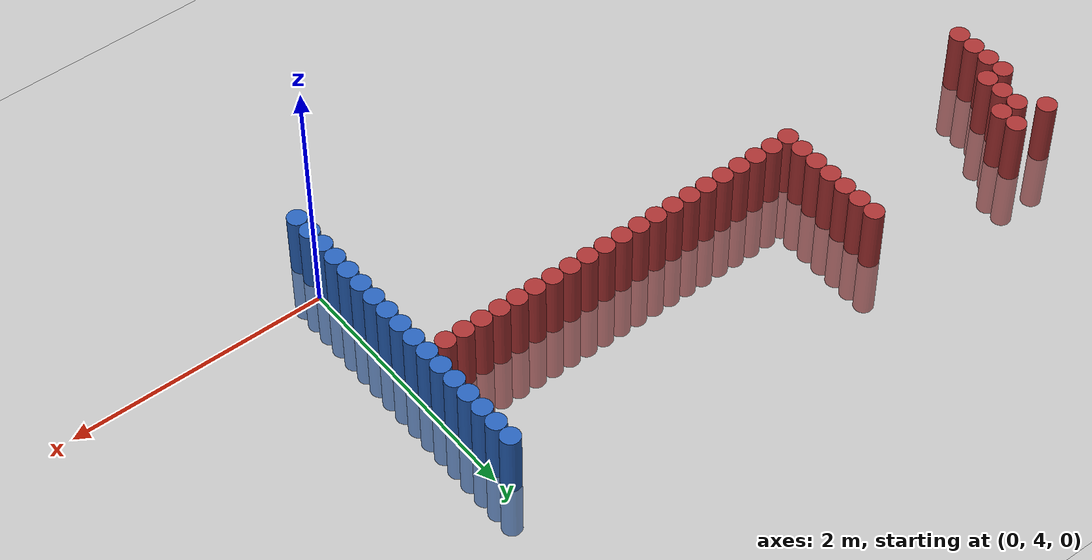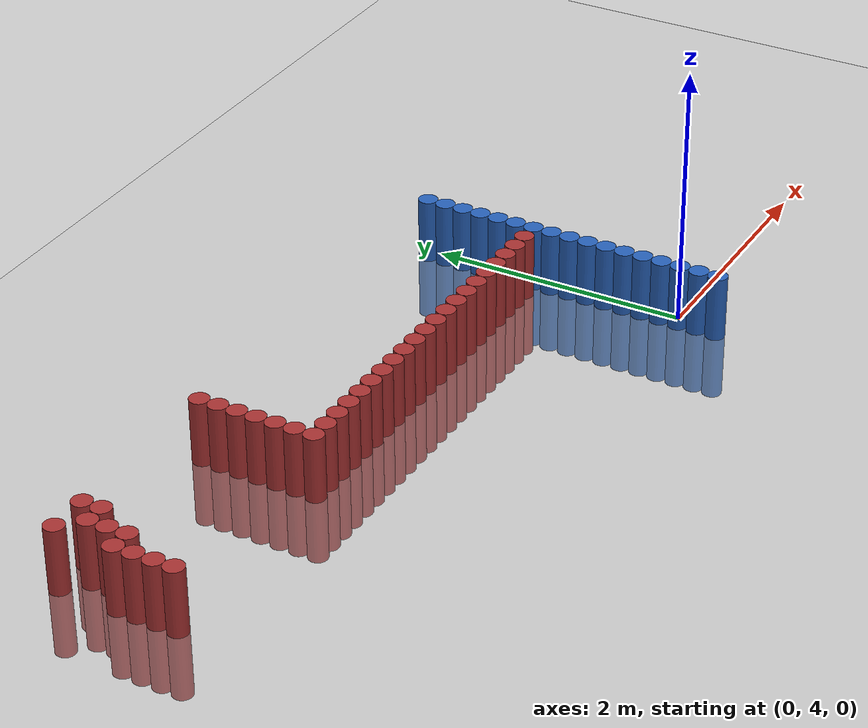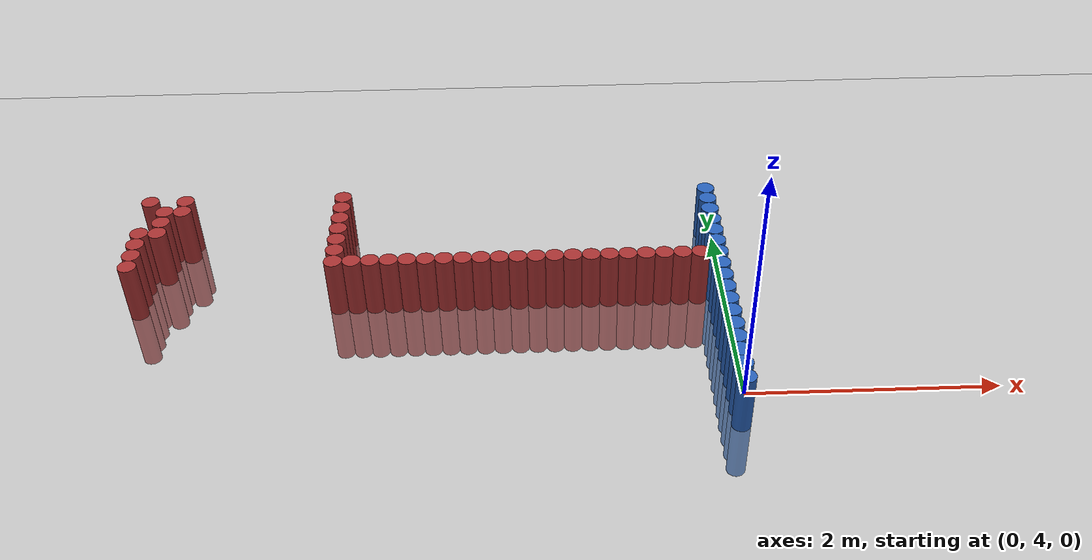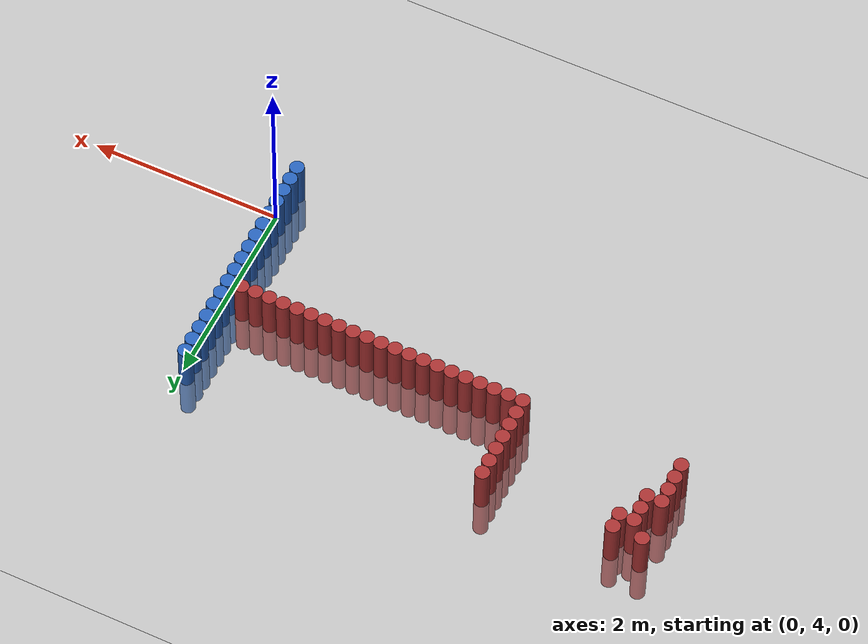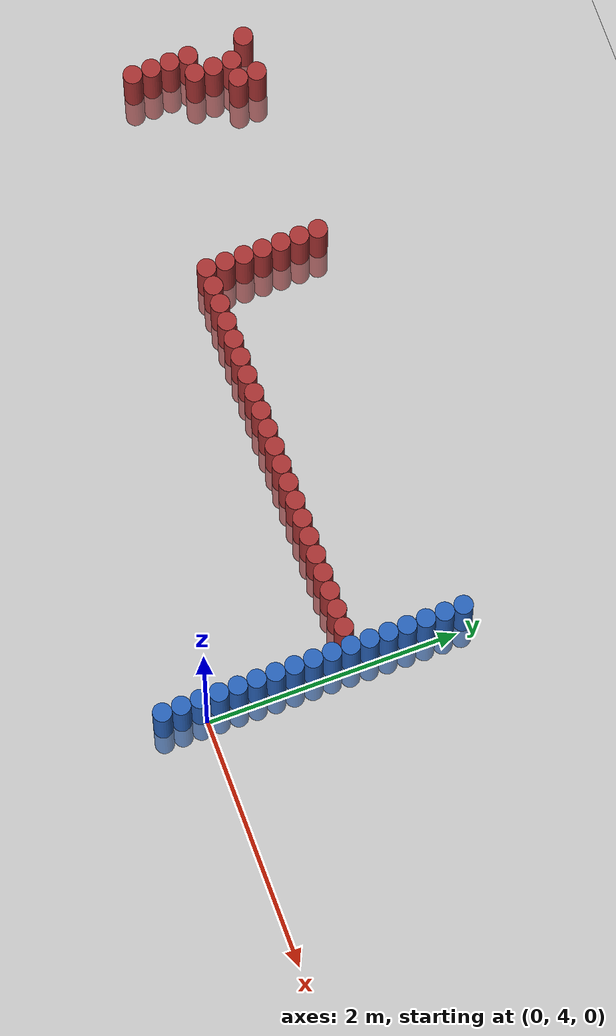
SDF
<sdf version="1.6">
 <world name="default">
  <model name="ground_plane">
   <static>1</static>
   <link name="link">
    <collision name="collision">
     <geometry><plane><normal>0 0 1</normal><size>100 100</size></plane></geometry>
     <surface><friction><ode><mu>100</mu><mu2>50</mu2></ode></friction></surface>
    </collision>
    <visual name="visual">
     <cast_shadows>0</cast_shadows>
     <geometry><plane><normal>0 0 1</normal><size>100 100</size></plane></geometry>
     <material>
      <script><uri>file://media/materials/scripts/gazebo.material</uri><name>Gazebo/Grey</name></script>
     </material>
    </visual>
   </link>
  </model>
  <model name="unit_cylinder_105">
   <static>1</static>
   <pose>-0.075000 3.675000 0.000000 0.000000 0.000000 0.000000</pose>
   <link name="link">
    <inertial>
     <mass>1</mass>
     <inertia><ixx>0.145833</ixx><ixy>0</ixy><ixz>0</ixz><iyy>0.145833</iyy><iyz>0</iyz><izz>0.125</izz></inertia>
    </inertial>
    <collision name="collision">
     <geometry><cylinder><radius>0.075000</radius><length>1</length></cylinder></geometry>
    </collision>
    <visual name="visual">
     <geometry><cylinder><radius>0.075000</radius><length>1</length></cylinder></geometry>
     <material>
      <ambient>0.152000 0.379000 0.720000 1</ambient>
      <diffuse>0.152000 0.379000 0.720000 1</diffuse>
     </material>
     <material>
      <script><name>Gazebo/Grey</name><uri>file://media/materials/scripts/gazebo.material</uri></script>
     </material>
    </visual>
   </link>
  </model>
  <model name="unit_cylinder_107">
   <static>1</static>
   <pose>-0.075000 3.825000 0.000000 0.000000 0.000000 0.000000</pose>
   <link name="link">
    <inertial>
     <mass>1</mass>
     <inertia><ixx>0.145833</ixx><ixy>0</ixy><ixz>0</ixz><iyy>0.145833</iyy><iyz>0</iyz><izz>0.125</izz></inertia>
    </inertial>
    <collision name="collision">
     <geometry><cylinder><radius>0.075000</radius><length>1</length></cylinder></geometry>
    </collision>
    <visual name="visual">
     <geometry><cylinder><radius>0.075000</radius><length>1</length></cylinder></geometry>
     <material>
      <ambient>0.152000 0.379000 0.720000 1</ambient>
      <diffuse>0.152000 0.379000 0.720000 1</diffuse>
     </material>
     <material>
      <script><name>Gazebo/Grey</name><uri>file://media/materials/scripts/gazebo.material</uri></script>
     </material>
    </visual>
   </link>
  </model>
  <model name="unit_cylinder_109">
   <static>1</static>
   <pose>-0.075000 3.975000 0.000000 0.000000 0.000000 0.000000</pose>
   <link name="link">
    <inertial>
     <mass>1</mass>
     <inertia><ixx>0.145833</ixx><ixy>0</ixy><ixz>0</ixz><iyy>0.145833</iyy><iyz>0</iyz><izz>0.125</izz></inertia>
    </inertial>
    <collision name="collision">
     <geometry><cylinder><radius>0.075000</radius><length>1</length></cylinder></geometry>
    </collision>
    <visual name="visual">
     <geometry><cylinder><radius>0.075000</radius><length>1</length></cylinder></geometry>
     <material>
      <ambient>0.152000 0.379000 0.720000 1</ambient>
      <diffuse>0.152000 0.379000 0.720000 1</diffuse>
     </material>
     <material>
      <script><name>Gazebo/Grey</name><uri>file://media/materials/scripts/gazebo.material</uri></script>
     </material>
    </visual>
   </link>
  </model>
  <model name="unit_cylinder_111">
   <static>1</static>
   <pose>-0.075000 4.125000 0.000000 0.000000 0.000000 0.000000</pose>
   <link name="link">
    <inertial>
     <mass>1</mass>
     <inertia><ixx>0.145833</ixx><ixy>0</ixy><ixz>0</ixz><iyy>0.145833</iyy><iyz>0</iyz><izz>0.125</izz></inertia>
    </inertial>
    <collision name="collision">
     <geometry><cylinder><radius>0.075000</radius><length>1</length></cylinder></geometry>
    </collision>
    <visual name="visual">
     <geometry><cylinder><radius>0.075000</radius><length>1</length></cylinder></geometry>
     <material>
      <ambient>0.152000 0.379000 0.720000 1</ambient>
      <diffuse>0.152000 0.379000 0.720000 1</diffuse>
     </material>
     <material>
      <script><name>Gazebo/Grey</name><uri>file://media/materials/scripts/gazebo.material</uri></script>
     </material>
    </visual>
   </link>
  </model>
  <model name="unit_cylinder_113">
   <static>1</static>
   <pose>-0.075000 4.275000 0.000000 0.000000 0.000000 0.000000</pose>
   <link name="link">
    <inertial>
     <mass>1</mass>
     <inertia><ixx>0.145833</ixx><ixy>0</ixy><ixz>0</ixz><iyy>0.145833</iyy><iyz>0</iyz><izz>0.125</izz></inertia>
    </inertial>
    <collision name="collision">
     <geometry><cylinder><radius>0.075000</radius><length>1</length></cylinder></geometry>
    </collision>
    <visual name="visual">
     <geometry><cylinder><radius>0.075000</radius><length>1</length></cylinder></geometry>
     <material>
      <ambient>0.152000 0.379000 0.720000 1</ambient>
      <diffuse>0.152000 0.379000 0.720000 1</diffuse>
     </material>
     <material>
      <script><name>Gazebo/Grey</name><uri>file://media/materials/scripts/gazebo.material</uri></script>
     </material>
    </visual>
   </link>
  </model>
  <model name="unit_cylinder_115">
   <static>1</static>
   <pose>-0.075000 4.425000 0.000000 0.000000 0.000000 0.000000</pose>
   <link name="link">
    <inertial>
     <mass>1</mass>
     <inertia><ixx>0.145833</ixx><ixy>0</ixy><ixz>0</ixz><iyy>0.145833</iyy><iyz>0</iyz><izz>0.125</izz></inertia>
    </inertial>
    <collision name="collision">
     <geometry><cylinder><radius>0.075000</radius><length>1</length></cylinder></geometry>
    </collision>
    <visual name="visual">
     <geometry><cylinder><radius>0.075000</radius><length>1</length></cylinder></geometry>
     <material>
      <ambient>0.152000 0.379000 0.720000 1</ambient>
      <diffuse>0.152000 0.379000 0.720000 1</diffuse>
     </material>
     <material>
      <script><name>Gazebo/Grey</name><uri>file://media/materials/scripts/gazebo.material</uri></script>
     </material>
    </visual>
   </link>
  </model>
  <model name="unit_cylinder_117">
   <static>1</static>
   <pose>-0.075000 4.575000 0.000000 0.000000 0.000000 0.000000</pose>
   <link name="link">
    <inertial>
     <mass>1</mass>
     <inertia><ixx>0.145833</ixx><ixy>0</ixy><ixz>0</ixz><iyy>0.145833</iyy><iyz>0</iyz><izz>0.125</izz></inertia>
    </inertial>
    <collision name="collision">
     <geometry><cylinder><radius>0.075000</radius><length>1</length></cylinder></geometry>
    </collision>
    <visual name="visual">
     <geometry><cylinder><radius>0.075000</radius><length>1</length></cylinder></geometry>
     <material>
      <ambient>0.152000 0.379000 0.720000 1</ambient>
      <diffuse>0.152000 0.379000 0.720000 1</diffuse>
     </material>
     <material>
      <script><name>Gazebo/Grey</name><uri>file://media/materials/scripts/gazebo.material</uri></script>
     </material>
    </visual>
   </link>
  </model>
  <model name="unit_cylinder_119">
   <static>1</static>
   <pose>-0.075000 4.725000 0.000000 0.000000 0.000000 0.000000</pose>
   <link name="link">
    <inertial>
     <mass>1</mass>
     <inertia><ixx>0.145833</ixx><ixy>0</ixy><ixz>0</ixz><iyy>0.145833</iyy><iyz>0</iyz><izz>0.125</izz></inertia>
    </inertial>
    <collision name="collision">
     <geometry><cylinder><radius>0.075000</radius><length>1</length></cylinder></geometry>
    </collision>
    <visual name="visual">
     <geometry><cylinder><radius>0.075000</radius><length>1</length></cylinder></geometry>
     <material>
      <ambient>0.152000 0.379000 0.720000 1</ambient>
      <diffuse>0.152000 0.379000 0.720000 1</diffuse>
     </material>
     <material>
      <script><name>Gazebo/Grey</name><uri>file://media/materials/scripts/gazebo.material</uri></script>
     </material>
    </visual>
   </link>
  </model>
  <model name="unit_cylinder_121">
   <static>1</static>
   <pose>-0.075000 4.875000 0.000000 0.000000 0.000000 0.000000</pose>
   <link name="link">
    <inertial>
     <mass>1</mass>
     <inertia><ixx>0.145833</ixx><ixy>0</ixy><ixz>0</ixz><iyy>0.145833</iyy><iyz>0</iyz><izz>0.125</izz></inertia>
    </inertial>
    <collision name="collision">
     <geometry><cylinder><radius>0.075000</radius><length>1</length></cylinder></geometry>
    </collision>
    <visual name="visual">
     <geometry><cylinder><radius>0.075000</radius><length>1</length></cylinder></geometry>
     <material>
      <ambient>0.152000 0.379000 0.720000 1</ambient>
      <diffuse>0.152000 0.379000 0.720000 1</diffuse>
     </material>
     <material>
      <script><name>Gazebo/Grey</name><uri>file://media/materials/scripts/gazebo.material</uri></script>
     </material>
    </visual>
   </link>
  </model>
  <model name="unit_cylinder_123">
   <static>1</static>
   <pose>-0.075000 5.025000 0.000000 0.000000 0.000000 0.000000</pose>
   <link name="link">
    <inertial>
     <mass>1</mass>
     <inertia><ixx>0.145833</ixx><ixy>0</ixy><ixz>0</ixz><iyy>0.145833</iyy><iyz>0</iyz><izz>0.125</izz></inertia>
    </inertial>
    <collision name="collision">
     <geometry><cylinder><radius>0.075000</radius><length>1</length></cylinder></geometry>
    </collision>
    <visual name="visual">
     <geometry><cylinder><radius>0.075000</radius><length>1</length></cylinder></geometry>
     <material>
      <ambient>0.152000 0.379000 0.720000 1</ambient>
      <diffuse>0.152000 0.379000 0.720000 1</diffuse>
     </material>
     <material>
      <script><name>Gazebo/Grey</name><uri>file://media/materials/scripts/gazebo.material</uri></script>
     </material>
    </visual>
   </link>
  </model>
  <model name="unit_cylinder_300">
   <static>1</static>
   <pose>-4.875000 5.175000 0.000000 0.000000 0.000000 0.000000</pose>
   <link name="link">
    <inertial>
     <mass>1</mass>
     <inertia><ixx>0.145833</ixx><ixy>0</ixy><ixz>0</ixz><iyy>0.145833</iyy><iyz>0</iyz><izz>0.125</izz></inertia>
    </inertial>
    <collision name="collision">
     <geometry><cylinder><radius>0.075000</radius><length>1</length></cylinder></geometry>
    </collision>
    <visual name="visual">
     <geometry><cylinder><radius>0.075000</radius><length>1</length></cylinder></geometry>
     <material>
      <ambient>0.648000 0.192000 0.192000 1</ambient>
      <diffuse>0.648000 0.192000 0.192000 1</diffuse>
     </material>
     <material>
      <script><name>Gazebo/Grey</name><uri>file://media/materials/scripts/gazebo.material</uri></script>
     </material>
    </visual>
   </link>
  </model>
  <model name="unit_cylinder_301">
   <static>1</static>
   <pose>-4.875000 5.325000 0.000000 0.000000 0.000000 0.000000</pose>
   <link name="link">
    <inertial>
     <mass>1</mass>
     <inertia><ixx>0.145833</ixx><ixy>0</ixy><ixz>0</ixz><iyy>0.145833</iyy><iyz>0</iyz><izz>0.125</izz></inertia>
    </inertial>
    <collision name="collision">
     <geometry><cylinder><radius>0.075000</radius><length>1</length></cylinder></geometry>
    </collision>
    <visual name="visual">
     <geometry><cylinder><radius>0.075000</radius><length>1</length></cylinder></geometry>
     <material>
      <ambient>0.648000 0.192000 0.192000 1</ambient>
      <diffuse>0.648000 0.192000 0.192000 1</diffuse>
     </material>
     <material>
      <script><name>Gazebo/Grey</name><uri>file://media/materials/scripts/gazebo.material</uri></script>
     </material>
    </visual>
   </link>
  </model>
  <model name="unit_cylinder_302">
   <static>1</static>
   <pose>-4.875000 5.475000 0.000000 0.000000 0.000000 0.000000</pose>
   <link name="link">
    <inertial>
     <mass>1</mass>
     <inertia><ixx>0.145833</ixx><ixy>0</ixy><ixz>0</ixz><iyy>0.145833</iyy><iyz>0</iyz><izz>0.125</izz></inertia>
    </inertial>
    <collision name="collision">
     <geometry><cylinder><radius>0.075000</radius><length>1</length></cylinder></geometry>
    </collision>
    <visual name="visual">
     <geometry><cylinder><radius>0.075000</radius><length>1</length></cylinder></geometry>
     <material>
      <ambient>0.648000 0.192000 0.192000 1</ambient>
      <diffuse>0.648000 0.192000 0.192000 1</diffuse>
     </material>
     <material>
      <script><name>Gazebo/Grey</name><uri>file://media/materials/scripts/gazebo.material</uri></script>
     </material>
    </visual>
   </link>
  </model>
  <model name="unit_cylinder_303">
   <static>1</static>
   <pose>-4.875000 5.625000 0.000000 0.000000 0.000000 0.000000</pose>
   <link name="link">
    <inertial>
     <mass>1</mass>
     <inertia><ixx>0.145833</ixx><ixy>0</ixy><ixz>0</ixz><iyy>0.145833</iyy><iyz>0</iyz><izz>0.125</izz></inertia>
    </inertial>
    <collision name="collision">
     <geometry><cylinder><radius>0.075000</radius><length>1</length></cylinder></geometry>
    </collision>
    <visual name="visual">
     <geometry><cylinder><radius>0.075000</radius><length>1</length></cylinder></geometry>
     <material>
      <ambient>0.648000 0.192000 0.192000 1</ambient>
      <diffuse>0.648000 0.192000 0.192000 1</diffuse>
     </material>
     <material>
      <script><name>Gazebo/Grey</name><uri>file://media/materials/scripts/gazebo.material</uri></script>
     </material>
    </visual>
   </link>
  </model>
  <model name="unit_cylinder_304">
   <static>1</static>
   <pose>-4.875000 6.075000 0.000000 0.000000 0.000000 0.000000</pose>
   <link name="link">
    <inertial>
     <mass>1</mass>
     <inertia><ixx>0.145833</ixx><ixy>0</ixy><ixz>0</ixz><iyy>0.145833</iyy><iyz>0</iyz><izz>0.125</izz></inertia>
    </inertial>
    <collision name="collision">
     <geometry><cylinder><radius>0.075000</radius><length>1</length></cylinder></geometry>
    </collision>
    <visual name="visual">
     <geometry><cylinder><radius>0.075000</radius><length>1</length></cylinder></geometry>
     <material>
      <ambient>0.648000 0.192000 0.192000 1</ambient>
      <diffuse>0.648000 0.192000 0.192000 1</diffuse>
     </material>
     <material>
      <script><name>Gazebo/Grey</name><uri>file://media/materials/scripts/gazebo.material</uri></script>
     </material>
    </visual>
   </link>
  </model>
  <model name="unit_cylinder_315">
   <static>1</static>
   <pose>-4.725000 5.625000 0.000000 0.000000 0.000000 0.000000</pose>
   <link name="link">
    <inertial>
     <mass>1</mass>
     <inertia><ixx>0.145833</ixx><ixy>0</ixy><ixz>0</ixz><iyy>0.145833</iyy><iyz>0</iyz><izz>0.125</izz></inertia>
    </inertial>
    <collision name="collision">
     <geometry><cylinder><radius>0.075000</radius><length>1</length></cylinder></geometry>
    </collision>
    <visual name="visual">
     <geometry><cylinder><radius>0.075000</radius><length>1</length></cylinder></geometry>
     <material>
      <ambient>0.648000 0.192000 0.192000 1</ambient>
      <diffuse>0.648000 0.192000 0.192000 1</diffuse>
     </material>
     <material>
      <script><name>Gazebo/Grey</name><uri>file://media/materials/scripts/gazebo.material</uri></script>
     </material>
    </visual>
   </link>
  </model>
  <model name="unit_cylinder_316">
   <static>1</static>
   <pose>-4.725000 5.775000 0.000000 0.000000 0.000000 0.000000</pose>
   <link name="link">
    <inertial>
     <mass>1</mass>
     <inertia><ixx>0.145833</ixx><ixy>0</ixy><ixz>0</ixz><iyy>0.145833</iyy><iyz>0</iyz><izz>0.125</izz></inertia>
    </inertial>
    <collision name="collision">
     <geometry><cylinder><radius>0.075000</radius><length>1</length></cylinder></geometry>
    </collision>
    <visual name="visual">
     <geometry><cylinder><radius>0.075000</radius><length>1</length></cylinder></geometry>
     <material>
      <ambient>0.648000 0.192000 0.192000 1</ambient>
      <diffuse>0.648000 0.192000 0.192000 1</diffuse>
     </material>
     <material>
      <script><name>Gazebo/Grey</name><uri>file://media/materials/scripts/gazebo.material</uri></script>
     </material>
    </visual>
   </link>
  </model>
  <model name="unit_cylinder_317">
   <static>1</static>
   <pose>-4.725000 5.925000 0.000000 0.000000 0.000000 0.000000</pose>
   <link name="link">
    <inertial>
     <mass>1</mass>
     <inertia><ixx>0.145833</ixx><ixy>0</ixy><ixz>0</ixz><iyy>0.145833</iyy><iyz>0</iyz><izz>0.125</izz></inertia>
    </inertial>
    <collision name="collision">
     <geometry><cylinder><radius>0.075000</radius><length>1</length></cylinder></geometry>
    </collision>
    <visual name="visual">
     <geometry><cylinder><radius>0.075000</radius><length>1</length></cylinder></geometry>
     <material>
      <ambient>0.648000 0.192000 0.192000 1</ambient>
      <diffuse>0.648000 0.192000 0.192000 1</diffuse>
     </material>
     <material>
      <script><name>Gazebo/Grey</name><uri>file://media/materials/scripts/gazebo.material</uri></script>
     </material>
    </visual>
   </link>
  </model>
  <model name="unit_cylinder_321">
   <static>1</static>
   <pose>-4.575000 5.925000 0.000000 0.000000 0.000000 0.000000</pose>
   <link name="link">
    <inertial>
     <mass>1</mass>
     <inertia><ixx>0.145833</ixx><ixy>0</ixy><ixz>0</ixz><iyy>0.145833</iyy><iyz>0</iyz><izz>0.125</izz></inertia>
    </inertial>
    <collision name="collision">
     <geometry><cylinder><radius>0.075000</radius><length>1</length></cylinder></geometry>
    </collision>
    <visual name="visual">
     <geometry><cylinder><radius>0.075000</radius><length>1</length></cylinder></geometry>
     <material>
      <ambient>0.648000 0.192000 0.192000 1</ambient>
      <diffuse>0.648000 0.192000 0.192000 1</diffuse>
     </material>
     <material>
      <script><name>Gazebo/Grey</name><uri>file://media/materials/scripts/gazebo.material</uri></script>
     </material>
    </visual>
   </link>
  </model>
  <model name="unit_cylinder_322">
   <static>1</static>
   <pose>-4.575000 6.075000 0.000000 0.000000 0.000000 0.000000</pose>
   <link name="link">
    <inertial>
     <mass>1</mass>
     <inertia><ixx>0.145833</ixx><ixy>0</ixy><ixz>0</ixz><iyy>0.145833</iyy><iyz>0</iyz><izz>0.125</izz></inertia>
    </inertial>
    <collision name="collision">
     <geometry><cylinder><radius>0.075000</radius><length>1</length></cylinder></geometry>
    </collision>
    <visual name="visual">
     <geometry><cylinder><radius>0.075000</radius><length>1</length></cylinder></geometry>
     <material>
      <ambient>0.648000 0.192000 0.192000 1</ambient>
      <diffuse>0.648000 0.192000 0.192000 1</diffuse>
     </material>
     <material>
      <script><name>Gazebo/Grey</name><uri>file://media/materials/scripts/gazebo.material</uri></script>
     </material>
    </visual>
   </link>
  </model>
  <model name="unit_cylinder_347">
   <static>1</static>
   <pose>-3.225000 5.175000 0.000000 0.000000 0.000000 0.000000</pose>
   <link name="link">
    <inertial>
     <mass>1</mass>
     <inertia><ixx>0.145833</ixx><ixy>0</ixy><ixz>0</ixz><iyy>0.145833</iyy><iyz>0</iyz><izz>0.125</izz></inertia>
    </inertial>
    <collision name="collision">
     <geometry><cylinder><radius>0.075000</radius><length>1</length></cylinder></geometry>
    </collision>
    <visual name="visual">
     <geometry><cylinder><radius>0.075000</radius><length>1</length></cylinder></geometry>
     <material>
      <ambient>0.648000 0.192000 0.192000 1</ambient>
      <diffuse>0.648000 0.192000 0.192000 1</diffuse>
     </material>
     <material>
      <script><name>Gazebo/Grey</name><uri>file://media/materials/scripts/gazebo.material</uri></script>
     </material>
    </visual>
   </link>
  </model>
  <model name="unit_cylinder_348">
   <static>1</static>
   <pose>-3.225000 5.325000 0.000000 0.000000 0.000000 0.000000</pose>
   <link name="link">
    <inertial>
     <mass>1</mass>
     <inertia><ixx>0.145833</ixx><ixy>0</ixy><ixz>0</ixz><iyy>0.145833</iyy><iyz>0</iyz><izz>0.125</izz></inertia>
    </inertial>
    <collision name="collision">
     <geometry><cylinder><radius>0.075000</radius><length>1</length></cylinder></geometry>
    </collision>
    <visual name="visual">
     <geometry><cylinder><radius>0.075000</radius><length>1</length></cylinder></geometry>
     <material>
      <ambient>0.648000 0.192000 0.192000 1</ambient>
      <diffuse>0.648000 0.192000 0.192000 1</diffuse>
     </material>
     <material>
      <script><name>Gazebo/Grey</name><uri>file://media/materials/scripts/gazebo.material</uri></script>
     </material>
    </visual>
   </link>
  </model>
  <model name="unit_cylinder_349">
   <static>1</static>
   <pose>-3.225000 5.475000 0.000000 0.000000 0.000000 0.000000</pose>
   <link name="link">
    <inertial>
     <mass>1</mass>
     <inertia><ixx>0.145833</ixx><ixy>0</ixy><ixz>0</ixz><iyy>0.145833</iyy><iyz>0</iyz><izz>0.125</izz></inertia>
    </inertial>
    <collision name="collision">
     <geometry><cylinder><radius>0.075000</radius><length>1</length></cylinder></geometry>
    </collision>
    <visual name="visual">
     <geometry><cylinder><radius>0.075000</radius><length>1</length></cylinder></geometry>
     <material>
      <ambient>0.648000 0.192000 0.192000 1</ambient>
      <diffuse>0.648000 0.192000 0.192000 1</diffuse>
     </material>
     <material>
      <script><name>Gazebo/Grey</name><uri>file://media/materials/scripts/gazebo.material</uri></script>
     </material>
    </visual>
   </link>
  </model>
  <model name="unit_cylinder_350">
   <static>1</static>
   <pose>-3.225000 5.625000 0.000000 0.000000 0.000000 0.000000</pose>
   <link name="link">
    <inertial>
     <mass>1</mass>
     <inertia><ixx>0.145833</ixx><ixy>0</ixy><ixz>0</ixz><iyy>0.145833</iyy><iyz>0</iyz><izz>0.125</izz></inertia>
    </inertial>
    <collision name="collision">
     <geometry><cylinder><radius>0.075000</radius><length>1</length></cylinder></geometry>
    </collision>
    <visual name="visual">
     <geometry><cylinder><radius>0.075000</radius><length>1</length></cylinder></geometry>
     <material>
      <ambient>0.648000 0.192000 0.192000 1</ambient>
      <diffuse>0.648000 0.192000 0.192000 1</diffuse>
     </material>
     <material>
      <script><name>Gazebo/Grey</name><uri>file://media/materials/scripts/gazebo.material</uri></script>
     </material>
    </visual>
   </link>
  </model>
  <model name="unit_cylinder_351">
   <static>1</static>
   <pose>-3.225000 5.775000 0.000000 0.000000 0.000000 0.000000</pose>
   <link name="link">
    <inertial>
     <mass>1</mass>
     <inertia><ixx>0.145833</ixx><ixy>0</ixy><ixz>0</ixz><iyy>0.145833</iyy><iyz>0</iyz><izz>0.125</izz></inertia>
    </inertial>
    <collision name="collision">
     <geometry><cylinder><radius>0.075000</radius><length>1</length></cylinder></geometry>
    </collision>
    <visual name="visual">
     <geometry><cylinder><radius>0.075000</radius><length>1</length></cylinder></geometry>
     <material>
      <ambient>0.648000 0.192000 0.192000 1</ambient>
      <diffuse>0.648000 0.192000 0.192000 1</diffuse>
     </material>
     <material>
      <script><name>Gazebo/Grey</name><uri>file://media/materials/scripts/gazebo.material</uri></script>
     </material>
    </visual>
   </link>
  </model>
  <model name="unit_cylinder_352">
   <static>1</static>
   <pose>-3.225000 5.925000 0.000000 0.000000 0.000000 0.000000</pose>
   <link name="link">
    <inertial>
     <mass>1</mass>
     <inertia><ixx>0.145833</ixx><ixy>0</ixy><ixz>0</ixz><iyy>0.145833</iyy><iyz>0</iyz><izz>0.125</izz></inertia>
    </inertial>
    <collision name="collision">
     <geometry><cylinder><radius>0.075000</radius><length>1</length></cylinder></geometry>
    </collision>
    <visual name="visual">
     <geometry><cylinder><radius>0.075000</radius><length>1</length></cylinder></geometry>
     <material>
      <ambient>0.648000 0.192000 0.192000 1</ambient>
      <diffuse>0.648000 0.192000 0.192000 1</diffuse>
     </material>
     <material>
      <script><name>Gazebo/Grey</name><uri>file://media/materials/scripts/gazebo.material</uri></script>
     </material>
    </visual>
   </link>
  </model>
  <model name="unit_cylinder_353">
   <static>1</static>
   <pose>-3.225000 6.075000 0.000000 0.000000 0.000000 0.000000</pose>
   <link name="link">
    <inertial>
     <mass>1</mass>
     <inertia><ixx>0.145833</ixx><ixy>0</ixy><ixz>0</ixz><iyy>0.145833</iyy><iyz>0</iyz><izz>0.125</izz></inertia>
    </inertial>
    <collision name="collision">
     <geometry><cylinder><radius>0.075000</radius><length>1</length></cylinder></geometry>
    </collision>
    <visual name="visual">
     <geometry><cylinder><radius>0.075000</radius><length>1</length></cylinder></geometry>
     <material>
      <ambient>0.648000 0.192000 0.192000 1</ambient>
      <diffuse>0.648000 0.192000 0.192000 1</diffuse>
     </material>
     <material>
      <script><name>Gazebo/Grey</name><uri>file://media/materials/scripts/gazebo.material</uri></script>
     </material>
    </visual>
   </link>
  </model>
  <model name="unit_cylinder_364">
   <static>1</static>
   <pose>-3.075000 5.175000 0.000000 0.000000 0.000000 0.000000</pose>
   <link name="link">
    <inertial>
     <mass>1</mass>
     <inertia><ixx>0.145833</ixx><ixy>0</ixy><ixz>0</ixz><iyy>0.145833</iyy><iyz>0</iyz><izz>0.125</izz></inertia>
    </inertial>
    <collision name="collision">
     <geometry><cylinder><radius>0.075000</radius><length>1</length></cylinder></geometry>
    </collision>
    <visual name="visual">
     <geometry><cylinder><radius>0.075000</radius><length>1</length></cylinder></geometry>
     <material>
      <ambient>0.648000 0.192000 0.192000 1</ambient>
      <diffuse>0.648000 0.192000 0.192000 1</diffuse>
     </material>
     <material>
      <script><name>Gazebo/Grey</name><uri>file://media/materials/scripts/gazebo.material</uri></script>
     </material>
    </visual>
   </link>
  </model>
  <model name="unit_cylinder_366">
   <static>1</static>
   <pose>-2.925000 5.175000 0.000000 0.000000 0.000000 0.000000</pose>
   <link name="link">
    <inertial>
     <mass>1</mass>
     <inertia><ixx>0.145833</ixx><ixy>0</ixy><ixz>0</ixz><iyy>0.145833</iyy><iyz>0</iyz><izz>0.125</izz></inertia>
    </inertial>
    <collision name="collision">
     <geometry><cylinder><radius>0.075000</radius><length>1</length></cylinder></geometry>
    </collision>
    <visual name="visual">
     <geometry><cylinder><radius>0.075000</radius><length>1</length></cylinder></geometry>
     <material>
      <ambient>0.648000 0.192000 0.192000 1</ambient>
      <diffuse>0.648000 0.192000 0.192000 1</diffuse>
     </material>
     <material>
      <script><name>Gazebo/Grey</name><uri>file://media/materials/scripts/gazebo.material</uri></script>
     </material>
    </visual>
   </link>
  </model>
  <model name="unit_cylinder_368">
   <static>1</static>
   <pose>-2.775000 5.175000 0.000000 0.000000 0.000000 0.000000</pose>
   <link name="link">
    <inertial>
     <mass>1</mass>
     <inertia><ixx>0.145833</ixx><ixy>0</ixy><ixz>0</ixz><iyy>0.145833</iyy><iyz>0</iyz><izz>0.125</izz></inertia>
    </inertial>
    <collision name="collision">
     <geometry><cylinder><radius>0.075000</radius><length>1</length></cylinder></geometry>
    </collision>
    <visual name="visual">
     <geometry><cylinder><radius>0.075000</radius><length>1</length></cylinder></geometry>
     <material>
      <ambient>0.648000 0.192000 0.192000 1</ambient>
      <diffuse>0.648000 0.192000 0.192000 1</diffuse>
     </material>
     <material>
      <script><name>Gazebo/Grey</name><uri>file://media/materials/scripts/gazebo.material</uri></script>
     </material>
    </visual>
   </link>
  </model>
  <model name="unit_cylinder_370">
   <static>1</static>
   <pose>-2.625000 5.175000 0.000000 0.000000 0.000000 0.000000</pose>
   <link name="link">
    <inertial>
     <mass>1</mass>
     <inertia><ixx>0.145833</ixx><ixy>0</ixy><ixz>0</ixz><iyy>0.145833</iyy><iyz>0</iyz><izz>0.125</izz></inertia>
    </inertial>
    <collision name="collision">
     <geometry><cylinder><radius>0.075000</radius><length>1</length></cylinder></geometry>
    </collision>
    <visual name="visual">
     <geometry><cylinder><radius>0.075000</radius><length>1</length></cylinder></geometry>
     <material>
      <ambient>0.648000 0.192000 0.192000 1</ambient>
      <diffuse>0.648000 0.192000 0.192000 1</diffuse>
     </material>
     <material>
      <script><name>Gazebo/Grey</name><uri>file://media/materials/scripts/gazebo.material</uri></script>
     </material>
    </visual>
   </link>
  </model>
  <model name="unit_cylinder_372">
   <static>1</static>
   <pose>-2.475000 5.175000 0.000000 0.000000 0.000000 0.000000</pose>
   <link name="link">
    <inertial>
     <mass>1</mass>
     <inertia><ixx>0.145833</ixx><ixy>0</ixy><ixz>0</ixz><iyy>0.145833</iyy><iyz>0</iyz><izz>0.125</izz></inertia>
    </inertial>
    <collision name="collision">
     <geometry><cylinder><radius>0.075000</radius><length>1</length></cylinder></geometry>
    </collision>
    <visual name="visual">
     <geometry><cylinder><radius>0.075000</radius><length>1</length></cylinder></geometry>
     <material>
      <ambient>0.648000 0.192000 0.192000 1</ambient>
      <diffuse>0.648000 0.192000 0.192000 1</diffuse>
     </material>
     <material>
      <script><name>Gazebo/Grey</name><uri>file://media/materials/scripts/gazebo.material</uri></script>
     </material>
    </visual>
   </link>
  </model>
  <model name="unit_cylinder_374">
   <static>1</static>
   <pose>-2.325000 5.175000 0.000000 0.000000 0.000000 0.000000</pose>
   <link name="link">
    <inertial>
     <mass>1</mass>
     <inertia><ixx>0.145833</ixx><ixy>0</ixy><ixz>0</ixz><iyy>0.145833</iyy><iyz>0</iyz><izz>0.125</izz></inertia>
    </inertial>
    <collision name="collision">
     <geometry><cylinder><radius>0.075000</radius><length>1</length></cylinder></geometry>
    </collision>
    <visual name="visual">
     <geometry><cylinder><radius>0.075000</radius><length>1</length></cylinder></geometry>
     <material>
      <ambient>0.648000 0.192000 0.192000 1</ambient>
      <diffuse>0.648000 0.192000 0.192000 1</diffuse>
     </material>
     <material>
      <script><name>Gazebo/Grey</name><uri>file://media/materials/scripts/gazebo.material</uri></script>
     </material>
    </visual>
   </link>
  </model>
  <model name="unit_cylinder_376">
   <static>1</static>
   <pose>-2.175000 5.175000 0.000000 0.000000 0.000000 0.000000</pose>
   <link name="link">
    <inertial>
     <mass>1</mass>
     <inertia><ixx>0.145833</ixx><ixy>0</ixy><ixz>0</ixz><iyy>0.145833</iyy><iyz>0</iyz><izz>0.125</izz></inertia>
    </inertial>
    <collision name="collision">
     <geometry><cylinder><radius>0.075000</radius><length>1</length></cylinder></geometry>
    </collision>
    <visual name="visual">
     <geometry><cylinder><radius>0.075000</radius><length>1</length></cylinder></geometry>
     <material>
      <ambient>0.648000 0.192000 0.192000 1</ambient>
      <diffuse>0.648000 0.192000 0.192000 1</diffuse>
     </material>
     <material>
      <script><name>Gazebo/Grey</name><uri>file://media/materials/scripts/gazebo.material</uri></script>
     </material>
    </visual>
   </link>
  </model>
  <model name="unit_cylinder_378">
   <static>1</static>
   <pose>-2.025000 5.175000 0.000000 0.000000 0.000000 0.000000</pose>
   <link name="link">
    <inertial>
     <mass>1</mass>
     <inertia><ixx>0.145833</ixx><ixy>0</ixy><ixz>0</ixz><iyy>0.145833</iyy><iyz>0</iyz><izz>0.125</izz></inertia>
    </inertial>
    <collision name="collision">
     <geometry><cylinder><radius>0.075000</radius><length>1</length></cylinder></geometry>
    </collision>
    <visual name="visual">
     <geometry><cylinder><radius>0.075000</radius><length>1</length></cylinder></geometry>
     <material>
      <ambient>0.648000 0.192000 0.192000 1</ambient>
      <diffuse>0.648000 0.192000 0.192000 1</diffuse>
     </material>
     <material>
      <script><name>Gazebo/Grey</name><uri>file://media/materials/scripts/gazebo.material</uri></script>
     </material>
    </visual>
   </link>
  </model>
  <model name="unit_cylinder_380">
   <static>1</static>
   <pose>-1.875000 5.175000 0.000000 0.000000 0.000000 0.000000</pose>
   <link name="link">
    <inertial>
     <mass>1</mass>
     <inertia><ixx>0.145833</ixx><ixy>0</ixy><ixz>0</ixz><iyy>0.145833</iyy><iyz>0</iyz><izz>0.125</izz></inertia>
    </inertial>
    <collision name="collision">
     <geometry><cylinder><radius>0.075000</radius><length>1</length></cylinder></geometry>
    </collision>
    <visual name="visual">
     <geometry><cylinder><radius>0.075000</radius><length>1</length></cylinder></geometry>
     <material>
      <ambient>0.648000 0.192000 0.192000 1</ambient>
      <diffuse>0.648000 0.192000 0.192000 1</diffuse>
     </material>
     <material>
      <script><name>Gazebo/Grey</name><uri>file://media/materials/scripts/gazebo.material</uri></script>
     </material>
    </visual>
   </link>
  </model>
  <model name="unit_cylinder_382">
   <static>1</static>
   <pose>-1.725000 5.175000 0.000000 0.000000 0.000000 0.000000</pose>
   <link name="link">
    <inertial>
     <mass>1</mass>
     <inertia><ixx>0.145833</ixx><ixy>0</ixy><ixz>0</ixz><iyy>0.145833</iyy><iyz>0</iyz><izz>0.125</izz></inertia>
    </inertial>
    <collision name="collision">
     <geometry><cylinder><radius>0.075000</radius><length>1</length></cylinder></geometry>
    </collision>
    <visual name="visual">
     <geometry><cylinder><radius>0.075000</radius><length>1</length></cylinder></geometry>
     <material>
      <ambient>0.648000 0.192000 0.192000 1</ambient>
      <diffuse>0.648000 0.192000 0.192000 1</diffuse>
     </material>
     <material>
      <script><name>Gazebo/Grey</name><uri>file://media/materials/scripts/gazebo.material</uri></script>
     </material>
    </visual>
   </link>
  </model>
  <model name="unit_cylinder_384">
   <static>1</static>
   <pose>-1.575000 5.175000 0.000000 0.000000 0.000000 0.000000</pose>
   <link name="link">
    <inertial>
     <mass>1</mass>
     <inertia><ixx>0.145833</ixx><ixy>0</ixy><ixz>0</ixz><iyy>0.145833</iyy><iyz>0</iyz><izz>0.125</izz></inertia>
    </inertial>
    <collision name="collision">
     <geometry><cylinder><radius>0.075000</radius><length>1</length></cylinder></geometry>
    </collision>
    <visual name="visual">
     <geometry><cylinder><radius>0.075000</radius><length>1</length></cylinder></geometry>
     <material>
      <ambient>0.648000 0.192000 0.192000 1</ambient>
      <diffuse>0.648000 0.192000 0.192000 1</diffuse>
     </material>
     <material>
      <script><name>Gazebo/Grey</name><uri>file://media/materials/scripts/gazebo.material</uri></script>
     </material>
    </visual>
   </link>
  </model>
  <model name="unit_cylinder_386">
   <static>1</static>
   <pose>-1.425000 5.175000 0.000000 0.000000 0.000000 0.000000</pose>
   <link name="link">
    <inertial>
     <mass>1</mass>
     <inertia><ixx>0.145833</ixx><ixy>0</ixy><ixz>0</ixz><iyy>0.145833</iyy><iyz>0</iyz><izz>0.125</izz></inertia>
    </inertial>
    <collision name="collision">
     <geometry><cylinder><radius>0.075000</radius><length>1</length></cylinder></geometry>
    </collision>
    <visual name="visual">
     <geometry><cylinder><radius>0.075000</radius><length>1</length></cylinder></geometry>
     <material>
      <ambient>0.648000 0.192000 0.192000 1</ambient>
      <diffuse>0.648000 0.192000 0.192000 1</diffuse>
     </material>
     <material>
      <script><name>Gazebo/Grey</name><uri>file://media/materials/scripts/gazebo.material</uri></script>
     </material>
    </visual>
   </link>
  </model>
  <model name="unit_cylinder_388">
   <static>1</static>
   <pose>-1.275000 5.175000 0.000000 0.000000 0.000000 0.000000</pose>
   <link name="link">
    <inertial>
     <mass>1</mass>
     <inertia><ixx>0.145833</ixx><ixy>0</ixy><ixz>0</ixz><iyy>0.145833</iyy><iyz>0</iyz><izz>0.125</izz></inertia>
    </inertial>
    <collision name="collision">
     <geometry><cylinder><radius>0.075000</radius><length>1</length></cylinder></geometry>
    </collision>
    <visual name="visual">
     <geometry><cylinder><radius>0.075000</radius><length>1</length></cylinder></geometry>
     <material>
      <ambient>0.648000 0.192000 0.192000 1</ambient>
      <diffuse>0.648000 0.192000 0.192000 1</diffuse>
     </material>
     <material>
      <script><name>Gazebo/Grey</name><uri>file://media/materials/scripts/gazebo.material</uri></script>
     </material>
    </visual>
   </link>
  </model>
  <model name="unit_cylinder_390">
   <static>1</static>
   <pose>-1.125000 5.175000 0.000000 0.000000 0.000000 0.000000</pose>
   <link name="link">
    <inertial>
     <mass>1</mass>
     <inertia><ixx>0.145833</ixx><ixy>0</ixy><ixz>0</ixz><iyy>0.145833</iyy><iyz>0</iyz><izz>0.125</izz></inertia>
    </inertial>
    <collision name="collision">
     <geometry><cylinder><radius>0.075000</radius><length>1</length></cylinder></geometry>
    </collision>
    <visual name="visual">
     <geometry><cylinder><radius>0.075000</radius><length>1</length></cylinder></geometry>
     <material>
      <ambient>0.648000 0.192000 0.192000 1</ambient>
      <diffuse>0.648000 0.192000 0.192000 1</diffuse>
     </material>
     <material>
      <script><name>Gazebo/Grey</name><uri>file://media/materials/scripts/gazebo.material</uri></script>
     </material>
    </visual>
   </link>
  </model>
  <model name="unit_cylinder_392">
   <static>1</static>
   <pose>-0.975000 5.175000 0.000000 0.000000 0.000000 0.000000</pose>
   <link name="link">
    <inertial>
     <mass>1</mass>
     <inertia><ixx>0.145833</ixx><ixy>0</ixy><ixz>0</ixz><iyy>0.145833</iyy><iyz>0</iyz><izz>0.125</izz></inertia>
    </inertial>
    <collision name="collision">
     <geometry><cylinder><radius>0.075000</radius><length>1</length></cylinder></geometry>
    </collision>
    <visual name="visual">
     <geometry><cylinder><radius>0.075000</radius><length>1</length></cylinder></geometry>
     <material>
      <ambient>0.648000 0.192000 0.192000 1</ambient>
      <diffuse>0.648000 0.192000 0.192000 1</diffuse>
     </material>
     <material>
      <script><name>Gazebo/Grey</name><uri>file://media/materials/scripts/gazebo.material</uri></script>
     </material>
    </visual>
   </link>
  </model>
  <model name="unit_cylinder_394">
   <static>1</static>
   <pose>-0.825000 5.175000 0.000000 0.000000 0.000000 0.000000</pose>
   <link name="link">
    <inertial>
     <mass>1</mass>
     <inertia><ixx>0.145833</ixx><ixy>0</ixy><ixz>0</ixz><iyy>0.145833</iyy><iyz>0</iyz><izz>0.125</izz></inertia>
    </inertial>
    <collision name="collision">
     <geometry><cylinder><radius>0.075000</radius><length>1</length></cylinder></geometry>
    </collision>
    <visual name="visual">
     <geometry><cylinder><radius>0.075000</radius><length>1</length></cylinder></geometry>
     <material>
      <ambient>0.648000 0.192000 0.192000 1</ambient>
      <diffuse>0.648000 0.192000 0.192000 1</diffuse>
     </material>
     <material>
      <script><name>Gazebo/Grey</name><uri>file://media/materials/scripts/gazebo.material</uri></script>
     </material>
    </visual>
   </link>
  </model>
  <model name="unit_cylinder_396">
   <static>1</static>
   <pose>-0.675000 5.175000 0.000000 0.000000 0.000000 0.000000</pose>
   <link name="link">
    <inertial>
     <mass>1</mass>
     <inertia><ixx>0.145833</ixx><ixy>0</ixy><ixz>0</ixz><iyy>0.145833</iyy><iyz>0</iyz><izz>0.125</izz></inertia>
    </inertial>
    <collision name="collision">
     <geometry><cylinder><radius>0.075000</radius><length>1</length></cylinder></geometry>
    </collision>
    <visual name="visual">
     <geometry><cylinder><radius>0.075000</radius><length>1</length></cylinder></geometry>
     <material>
      <ambient>0.648000 0.192000 0.192000 1</ambient>
      <diffuse>0.648000 0.192000 0.192000 1</diffuse>
     </material>
     <material>
      <script><name>Gazebo/Grey</name><uri>file://media/materials/scripts/gazebo.material</uri></script>
     </material>
    </visual>
   </link>
  </model>
  <model name="unit_cylinder_398">
   <static>1</static>
   <pose>-0.525000 5.175000 0.000000 0.000000 0.000000 0.000000</pose>
   <link name="link">
    <inertial>
     <mass>1</mass>
     <inertia><ixx>0.145833</ixx><ixy>0</ixy><ixz>0</ixz><iyy>0.145833</iyy><iyz>0</iyz><izz>0.125</izz></inertia>
    </inertial>
    <collision name="collision">
     <geometry><cylinder><radius>0.075000</radius><length>1</length></cylinder></geometry>
    </collision>
    <visual name="visual">
     <geometry><cylinder><radius>0.075000</radius><length>1</length></cylinder></geometry>
     <material>
      <ambient>0.648000 0.192000 0.192000 1</ambient>
      <diffuse>0.648000 0.192000 0.192000 1</diffuse>
     </material>
     <material>
      <script><name>Gazebo/Grey</name><uri>file://media/materials/scripts/gazebo.material</uri></script>
     </material>
    </visual>
   </link>
  </model>
  <model name="unit_cylinder_400">
   <static>1</static>
   <pose>-0.375000 5.175000 0.000000 0.000000 0.000000 0.000000</pose>
   <link name="link">
    <inertial>
     <mass>1</mass>
     <inertia><ixx>0.145833</ixx><ixy>0</ixy><ixz>0</ixz><iyy>0.145833</iyy><iyz>0</iyz><izz>0.125</izz></inertia>
    </inertial>
    <collision name="collision">
     <geometry><cylinder><radius>0.075000</radius><length>1</length></cylinder></geometry>
    </collision>
    <visual name="visual">
     <geometry><cylinder><radius>0.075000</radius><length>1</length></cylinder></geometry>
     <material>
      <ambient>0.648000 0.192000 0.192000 1</ambient>
      <diffuse>0.648000 0.192000 0.192000 1</diffuse>
     </material>
     <material>
      <script><name>Gazebo/Grey</name><uri>file://media/materials/scripts/gazebo.material</uri></script>
     </material>
    </visual>
   </link>
  </model>
  <model name="unit_cylinder_402">
   <static>1</static>
   <pose>-0.225000 5.175000 0.000000 0.000000 0.000000 0.000000</pose>
   <link name="link">
    <inertial>
     <mass>1</mass>
     <inertia><ixx>0.145833</ixx><ixy>0</ixy><ixz>0</ixz><iyy>0.145833</iyy><iyz>0</iyz><izz>0.125</izz></inertia>
    </inertial>
    <collision name="collision">
     <geometry><cylinder><radius>0.075000</radius><length>1</length></cylinder></geometry>
    </collision>
    <visual name="visual">
     <geometry><cylinder><radius>0.075000</radius><length>1</length></cylinder></geometry>
     <material>
      <ambient>0.648000 0.192000 0.192000 1</ambient>
      <diffuse>0.648000 0.192000 0.192000 1</diffuse>
     </material>
     <material>
      <script><name>Gazebo/Grey</name><uri>file://media/materials/scripts/gazebo.material</uri></script>
     </material>
    </visual>
   </link>
  </model>
  <model name="unit_cylinder_404">
   <static>1</static>
   <pose>-0.075000 5.175000 0.000000 0.000000 0.000000 0.000000</pose>
   <link name="link">
    <inertial>
     <mass>1</mass>
     <inertia><ixx>0.145833</ixx><ixy>0</ixy><ixz>0</ixz><iyy>0.145833</iyy><iyz>0</iyz><izz>0.125</izz></inertia>
    </inertial>
    <collision name="collision">
     <geometry><cylinder><radius>0.075000</radius><length>1</length></cylinder></geometry>
    </collision>
    <visual name="visual">
     <geometry><cylinder><radius>0.075000</radius><length>1</length></cylinder></geometry>
     <material>
      <ambient>0.152000 0.379000 0.720000 1</ambient>
      <diffuse>0.152000 0.379000 0.720000 1</diffuse>
     </material>
     <material>
      <script><name>Gazebo/Grey</name><uri>file://media/materials/scripts/gazebo.material</uri></script>
     </material>
    </visual>
   </link>
  </model>
  <model name="unit_cylinder_405">
   <static>1</static>
   <pose>-0.075000 5.325000 0.000000 0.000000 0.000000 0.000000</pose>
   <link name="link">
    <inertial>
     <mass>1</mass>
     <inertia><ixx>0.145833</ixx><ixy>0</ixy><ixz>0</ixz><iyy>0.145833</iyy><iyz>0</iyz><izz>0.125</izz></inertia>
    </inertial>
    <collision name="collision">
     <geometry><cylinder><radius>0.075000</radius><length>1</length></cylinder></geometry>
    </collision>
    <visual name="visual">
     <geometry><cylinder><radius>0.075000</radius><length>1</length></cylinder></geometry>
     <material>
      <ambient>0.152000 0.379000 0.720000 1</ambient>
      <diffuse>0.152000 0.379000 0.720000 1</diffuse>
     </material>
     <material>
      <script><name>Gazebo/Grey</name><uri>file://media/materials/scripts/gazebo.material</uri></script>
     </material>
    </visual>
   </link>
  </model>
  <model name="unit_cylinder_406">
   <static>1</static>
   <pose>-0.075000 5.475000 0.000000 0.000000 0.000000 0.000000</pose>
   <link name="link">
    <inertial>
     <mass>1</mass>
     <inertia><ixx>0.145833</ixx><ixy>0</ixy><ixz>0</ixz><iyy>0.145833</iyy><iyz>0</iyz><izz>0.125</izz></inertia>
    </inertial>
    <collision name="collision">
     <geometry><cylinder><radius>0.075000</radius><length>1</length></cylinder></geometry>
    </collision>
    <visual name="visual">
     <geometry><cylinder><radius>0.075000</radius><length>1</length></cylinder></geometry>
     <material>
      <ambient>0.152000 0.379000 0.720000 1</ambient>
      <diffuse>0.152000 0.379000 0.720000 1</diffuse>
     </material>
     <material>
      <script><name>Gazebo/Grey</name><uri>file://media/materials/scripts/gazebo.material</uri></script>
     </material>
    </visual>
   </link>
  </model>
  <model name="unit_cylinder_407">
   <static>1</static>
   <pose>-0.075000 5.625000 0.000000 0.000000 0.000000 0.000000</pose>
   <link name="link">
    <inertial>
     <mass>1</mass>
     <inertia><ixx>0.145833</ixx><ixy>0</ixy><ixz>0</ixz><iyy>0.145833</iyy><iyz>0</iyz><izz>0.125</izz></inertia>
    </inertial>
    <collision name="collision">
     <geometry><cylinder><radius>0.075000</radius><length>1</length></cylinder></geometry>
    </collision>
    <visual name="visual">
     <geometry><cylinder><radius>0.075000</radius><length>1</length></cylinder></geometry>
     <material>
      <ambient>0.152000 0.379000 0.720000 1</ambient>
      <diffuse>0.152000 0.379000 0.720000 1</diffuse>
     </material>
     <material>
      <script><name>Gazebo/Grey</name><uri>file://media/materials/scripts/gazebo.material</uri></script>
     </material>
    </visual>
   </link>
  </model>
  <model name="unit_cylinder_408">
   <static>1</static>
   <pose>-0.075000 5.775000 0.000000 0.000000 0.000000 0.000000</pose>
   <link name="link">
    <inertial>
     <mass>1</mass>
     <inertia><ixx>0.145833</ixx><ixy>0</ixy><ixz>0</ixz><iyy>0.145833</iyy><iyz>0</iyz><izz>0.125</izz></inertia>
    </inertial>
    <collision name="collision">
     <geometry><cylinder><radius>0.075000</radius><length>1</length></cylinder></geometry>
    </collision>
    <visual name="visual">
     <geometry><cylinder><radius>0.075000</radius><length>1</length></cylinder></geometry>
     <material>
      <ambient>0.152000 0.379000 0.720000 1</ambient>
      <diffuse>0.152000 0.379000 0.720000 1</diffuse>
     </material>
     <material>
      <script><name>Gazebo/Grey</name><uri>file://media/materials/scripts/gazebo.material</uri></script>
     </material>
    </visual>
   </link>
  </model>
  <model name="unit_cylinder_409">
   <static>1</static>
   <pose>-0.075000 5.925000 0.000000 0.000000 0.000000 0.000000</pose>
   <link name="link">
    <inertial>
     <mass>1</mass>
     <inertia><ixx>0.145833</ixx><ixy>0</ixy><ixz>0</ixz><iyy>0.145833</iyy><iyz>0</iyz><izz>0.125</izz></inertia>
    </inertial>
    <collision name="collision">
     <geometry><cylinder><radius>0.075000</radius><length>1</length></cylinder></geometry>
    </collision>
    <visual name="visual">
     <geometry><cylinder><radius>0.075000</radius><length>1</length></cylinder></geometry>
     <material>
      <ambient>0.152000 0.379000 0.720000 1</ambient>
      <diffuse>0.152000 0.379000 0.720000 1</diffuse>
     </material>
     <material>
      <script><name>Gazebo/Grey</name><uri>file://media/materials/scripts/gazebo.material</uri></script>
     </material>
    </visual>
   </link>
  </model>
  <model name="unit_cylinder_410">
   <static>1</static>
   <pose>-0.075000 6.075000 0.000000 0.000000 0.000000 0.000000</pose>
   <link name="link">
    <inertial>
     <mass>1</mass>
     <inertia><ixx>0.145833</ixx><ixy>0</ixy><ixz>0</ixz><iyy>0.145833</iyy><iyz>0</iyz><izz>0.125</izz></inertia>
    </inertial>
    <collision name="collision">
     <geometry><cylinder><radius>0.075000</radius><length>1</length></cylinder></geometry>
    </collision>
    <visual name="visual">
     <geometry><cylinder><radius>0.075000</radius><length>1</length></cylinder></geometry>
     <material>
      <ambient>0.152000 0.379000 0.720000 1</ambient>
      <diffuse>0.152000 0.379000 0.720000 1</diffuse>
     </material>
     <material>
      <script><name>Gazebo/Grey</name><uri>file://media/materials/scripts/gazebo.material</uri></script>
     </material>
    </visual>
   </link>
  </model>
 </world>
</sdf>
